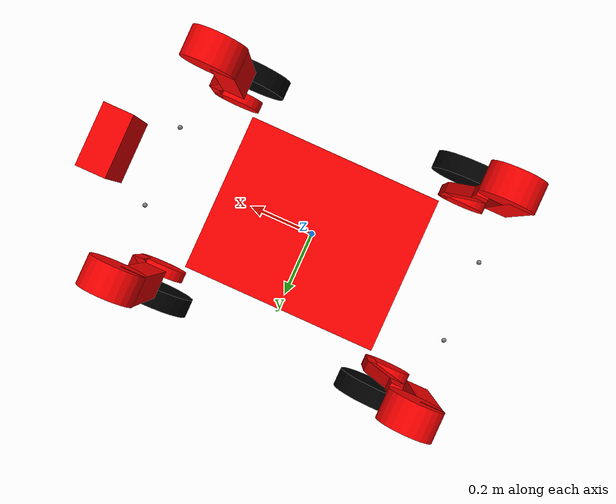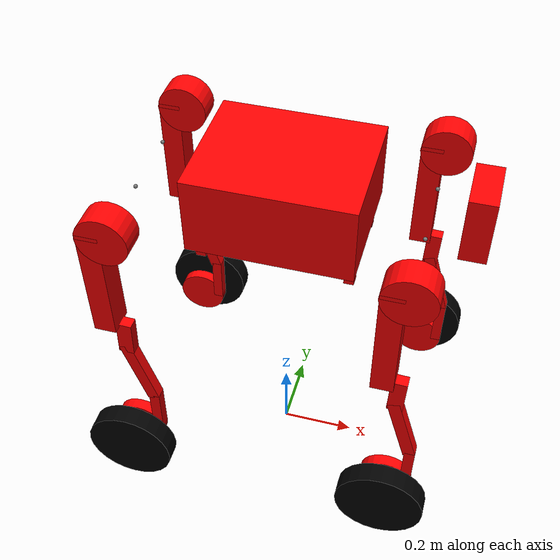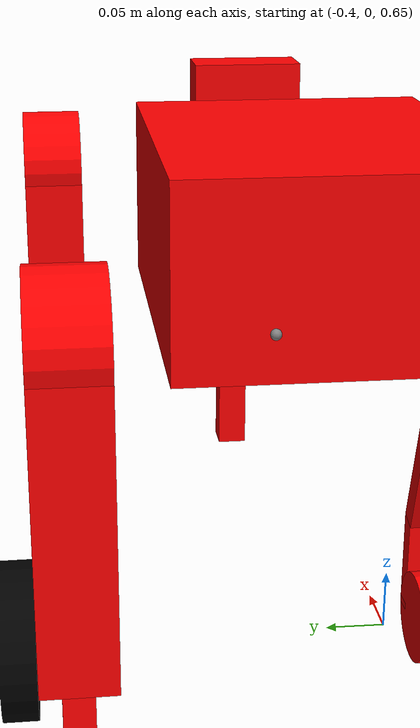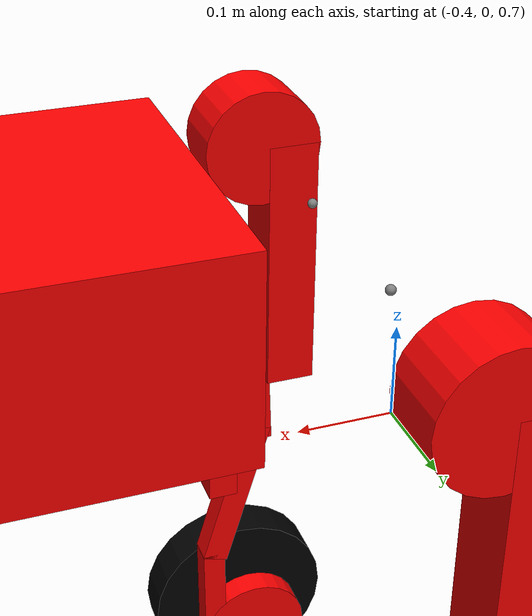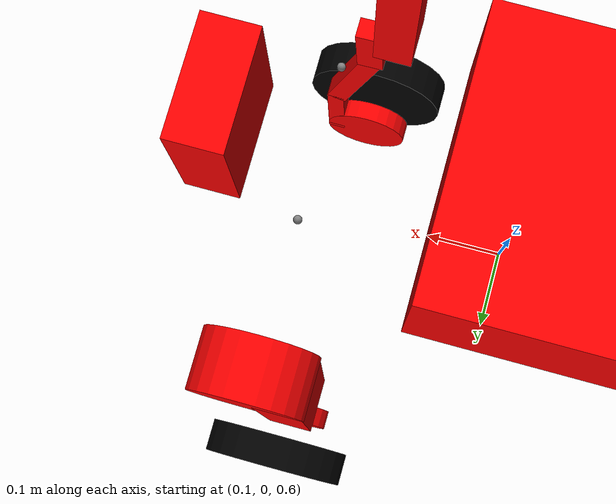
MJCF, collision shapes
<mujoco model="dynawheel">
  <compiler angle="radian" meshdir="../meshes/" autolimits="true"/>
  <option gravity='0 0 -9.806' iterations='50' solver='Newton' timestep='0.0005' cone="elliptic" impratio="100"/>

  <default>
    <material specular="0" shininess="0.25"/>

    <default class="dynawheel">
      <default class="visual">
        <geom contype="0" conaffinity="0" group="0" />
      </default>
      <default class="collision">
        <geom group="1" mass="0" density="0" />
      </default>
    </default>
  </default>

  <visual>
    <rgba com="0.502 1.0 0 0.5" contactforce="0.98 0.4 0.4 0.7" contactpoint="1.0 1.0 0.6 0.4"/>
    <scale com="0.2" forcewidth="0.035" contactwidth="0.10" contactheight="0.04"/>
  </visual>

  <asset>
    <mesh name="Base" file="base_simple.STL"/>
    <mesh name="LF_hip" file="lf_hip.STL"/>
    <mesh name="LF_thigh" file="lf_thigh.STL"/>
    <mesh name="RF_thigh" file="rf_thigh.STL"/>
    <mesh name="LF_calf" file="lf_calf.STL"/>
    <mesh name="RF_calf" file="rf_calf.STL"/>
    <mesh name="LF_wheel" file="lf_wheel.STL"/>
    <mesh name="RF_wheel" file="rf_wheel.STL"/>
    <mesh name="LIDAR" file="lidar.STL"/>
  </asset>

  <worldbody>
    <body name="Base" pos="0 0 0.90" quat="1 0 0 0" childclass="dynawheel">
    <joint name="floating_base" type="free" />
    <inertial mass="35.0" pos="0.0 -0.0 -0.0" fullinertia="0.236918 1.477981 1.527714 0.0 0.0 0.0"/>
    <geom pos="0 0 0" euler="0 0 0" type="mesh" contype="0" conaffinity="0" density="0" rgba="0.5 0.5 0.5 1" mesh="Base" group="1" />
    <geom pos="0.47403 0 0.01878" euler="0 0 0" type="mesh" contype="0" conaffinity="0" density="0" rgba="0.5 0.5 0.5 1" mesh="LIDAR" group="1" />
    <geom pos="0.0 0.0 0.0" euler="0 0 0" type="box" size="0.205 0.165 0.10" rgba="1 0 0 1" group="2" />
    <geom pos="0.185 0.105 -0.13" euler="0 0 0" type="box" size="0.0125 0.0125 0.03" rgba="1 0 0 1" group="2" />
    <geom pos="0.185 -0.105 -0.13" euler="0 0 0" type="box" size="0.0125 0.0125 0.03" rgba="1 0 0 1" group="2" />
    <geom pos="-0.185 0.105 -0.13" euler="0 0 0" type="box" size="0.0125 0.0125 0.03" rgba="1 0 0 1" group="2" />
    <geom pos="-0.185 -0.105 -0.13" euler="0 0 0" type="box" size="0.0125 0.0125 0.03" rgba="1 0 0 1" group="2" />
    <geom pos="0.456 0 0.024" euler="0 0 0" type="box" size="0.033 0.07 0.085" rgba="1 0 0 1" group="2" />
    <site name="imu" pos="0 0 0" quat="1 0 0 0"/>
      <body name="LF_hip" pos="0.346 0.09 0">
        <inertial mass="4.0" pos="-0.0037293 -0.0028271 -2.3984E-05" diaginertia="0.005458 0.008605 0.005981"/>
        <joint name="LF_HAA" pos="0 0 0" axis="1 0 0" range="-0.50 0.50" actuatorfrcrange="-200 200"/>
        <site name="LF_HAA_tor" pos="0 0 0" quat="1 0 0 0"/>
        <geom type="mesh" pos="0 0 0" euler="0 0 0" contype="0" conaffinity="0" density="0" rgba="0 0.8 0 1" mesh="LF_hip" group="1" />
        <body name="LF_thigh" pos="0.0 0.1733 0.0">
          <inertial mass="5.5" pos="-0.003963 -0.044529 -0.029278" fullinertia="0.068416 0.060125 0.017696 0.000018 -0.003286 0.000136"/>
          <joint name="LF_HFE" pos="0 0 0" axis="0 1 0" range="-1.57 3.14"/>
          <site name="LF_HFE_tor" pos="0 0 0" euler="0 0 0"/>
          <geom type="mesh" pos="0 0 0" euler="0 0 0" contype="0" conaffinity="0" density="0" rgba="0 0 0.8 1" mesh="LF_thigh" group="1" />
          <geom pos="0.0 0.0 0.0" euler="1.57 0 0" type="cylinder" size="0.065 0.035" rgba="1 0 0 1" group="2" />
          <geom pos="-0.035 0 -0.144" euler="0 0 0" type="box" size="0.028 0.035 0.155" rgba="1 0 0 1" group="2" />
          <body name="LF_calf" pos="0 0.0 -0.350">
            <inertial pos="0.006279 0.013363 -0.251104" mass="4.0" fullinertia="0.335338 0.337205 0.007327 0.000054 0.005346 0.018379"/>
            <joint name="LF_KFE" pos="0 0 0" axis="0 1 0" range="-2.74 -0.87" />
            <site name="LF_KFE_tor" pos="0 0 0" euler="0 0 0"/>
            <geom type="mesh" pos="0 0 0" euler="0 0 0" contype="0" conaffinity="0" density="0" rgba="0.870588 0.811765 0.764706 1" mesh="LF_calf" group="1" />
            <geom pos="0.002 0.0 0.008" euler="0 0.04 0" type="box" size="0.02 0.015 0.05" rgba="1 0 0 1" group="2" />
            <geom pos="0.025 0.0 -0.12" euler="0 -0.29 0" type="box" size="0.016 0.015 0.10" rgba="1 0 0 1" group="2" />
            <geom pos="0.054 0.0 -0.285" euler="0 0.01 0" type="box" size="0.014 0.015 0.075" rgba="1 0 0 1" group="2" />
            <geom pos="0.0 0.0 -0.350" euler="1.57 0 0" type="cylinder" size="0.068 0.015" rgba="1 0 0 1" group="2" />
            <body name="LF_wheel_motor" pos="0.0 0.0735 -0.35">
            <inertial pos="0 -0.0 0" mass="1.722" diaginertia="0.00781 0.014943 0.007809"/>
              <joint name="LF_WHEEL" pos="0 0 0" axis="0 1 0" range="-99999 99999" />
              <site name="LF_WHEEL_tor" pos="0 0 0" quat="1 0 0 0"/>
              <geom type="mesh" contype="0" conaffinity="0" density="0" rgba="0 0 0 1" mesh="LF_wheel" group="1"/>
              <geom pos="0 0 0" euler="1.57079632679 0 0" type="cylinder" size="0.116 0.026" friction="0.4 0.005 0.0001" rgba="0 0 0 1" group="2"/>
            </body>
          </body>
        </body>
      </body>
      <body name="LH_hip" pos="-0.346 0.09 0">
        <inertial mass="4.0" pos="0.0037293 -0.0028271 -2.3984E-05" diaginertia="0.005458 0.008605 0.005981"/>
        <joint name="LH_HAA" pos="0 0 0" axis="1 0 0" range="-0.50 0.50"/>
        <site name="LH_HAA_tor" pos="0 0 0" euler="0 0 0"/>
        <geom type="mesh" pos="0 0 0" euler="0 3.14 0" contype="0" conaffinity="0" density="0" rgba="0 0.8 0 1" mesh="LF_hip" group="1" />
        <body name="LH_thigh" pos="0.0 0.1733 0.0">
          <inertial mass="5.5" pos="-0.003963 -0.044529 -0.029278" fullinertia="0.068416 0.060125 0.017696 0.000018 -0.003286 0.000136"/>
          <joint name="LH_HFE" pos="0 0 0" axis="0 1 0" range="-1.43 4.58"/>
          <site name="LH_HFE_tor" pos="0 0 0" euler="0 0 0"/>
          <geom type="mesh" pos="0 0 0" euler="0 0 0" contype="0" conaffinity="0" density="0" rgba="0 0 0.8 1" mesh="LF_thigh" group="1" />
          <geom pos="0.0 0.0 0.0" euler="1.57 0 0" type="cylinder" size="0.065 0.035" rgba="1 0 0 1" group="2" />
          <geom pos="-0.035 0.0 -0.144" euler="0 0 0" type="box" size="0.028 0.035 0.155" rgba="1 0 0 1" group="2" />
          <body name="LH_calf" pos="0 0 -0.350">
            <inertial pos="0.006279 0.013363 -0.251104" mass="4.0" fullinertia="0.335338 0.337205 0.007327 0.000054 0.005346 0.018379"/>
            <joint name="LH_KFE" pos="0 0 0" axis="0 1 0" range="-2.74 -0.87" />
            <site name="LH_KFE_tor" pos="0 0 0" euler="0 0 0"/>
            <geom type="mesh" pos="0 0 0" euler="0 0 0" contype="0" conaffinity="0" density="0" rgba="0.870588 0.811765 0.764706 1" mesh="LF_calf" group="1" />
            <geom pos="0.002 0.0 0.008" euler="0 0.04 0" type="box" size="0.02 0.015 0.05" rgba="1 0 0 1" group="2" />
            <geom pos="0.025 0.0 -0.12" euler="0 -0.29 0" type="box" size="0.016 0.015 0.10" rgba="1 0 0 1" group="2" />
            <geom pos="0.054 0.0 -0.285" euler="0 0.01 0" type="box" size="0.014 0.015 0.075" rgba="1 0 0 1" group="2" />
            <geom pos="0.0 0.0 -0.350" euler="1.57 0 0" type="cylinder" size="0.068 0.015" rgba="1 0 0 1" group="2" />
            <body name="LH_wheel_motor" pos="0.0 0.0735 -0.35">
            <inertial pos="0 -0.000777 0" mass="1.722" diaginertia="0.00781 0.014943 0.007809"/>
              <joint name="LH_WHEEL" pos="0 0 0" axis="0 1 0" range="-99999 99999" />
              <site name="LH_WHEEL_tor" pos="0 0 0" quat="1 0 0 0"/>
              <geom type="mesh" contype="0" conaffinity="0" density="0" rgba="0 0 0 1" mesh="LF_wheel" group="1"/>
              <geom pos="0 0 0" euler="1.57079632679 0 0" type="cylinder" size="0.116 0.026" friction="0.4 0.005 0.0001" rgba="0 0 0 1" group="2"/>
            </body>
          </body>
        </body>
      </body>
      <body name="RF_hip" pos="0.346 -0.09 0">
        <inertial mass="4.0" pos="-0.0037293 0.0028271 -2.3984E-05" diaginertia="0.005458 0.008605 0.005981"/>
        <joint name="RF_HAA" pos="0 0 0" axis="1 0 0" range="-0.50 0.50"/>
        <site name="RF_HAA_tor" pos="0 0 0" quat="1 0 0 0"/>
        <geom type="mesh" pos="0 0 0" euler="3.14 0 0" contype="0" conaffinity="0" density="0" rgba="0 0.8 0 1" mesh="LF_hip" group="1" />
        <body name="RF_thigh" pos="0.0 -0.1733 0.0">
          <inertial mass="5.5" pos="-0.003963 0.044529 -0.029278" fullinertia="0.068416 0.060125 0.017696 -0.000018 -0.003286 -0.000136"/>
          <joint name="RF_HFE" pos="0 0 0" axis="0 1 0" range="-1.43 4.58"/>
          <site name="RF_HFE_tor" pos="0 0 0" euler="0 0 0"/>
          <geom type="mesh" pos="0 0 0" euler="0 0 0" contype="0" conaffinity="0" density="0" rgba="0 0 0.8 1" mesh="RF_thigh" group="1" />
          <geom pos="0.0 0.0 0.0" euler="1.57 0 0" type="cylinder" size="0.065 0.035" rgba="1 0 0 1" group="2" />
          <geom pos="-0.035 0 -0.144" euler="0 0 0" type="box" size="0.028 0.035 0.155" rgba="1 0 0 1" group="2" />
          <body name="RF_calf" pos="0 0.0 -0.350">
            <inertial pos="0.006279 -0.013363 -0.251104" mass="4.0" fullinertia="0.335338 0.337205 0.007327 -0.000054 0.005346 -0.018379"/>
            <joint name="RF_KFE" pos="0 0 0" axis="0 1 0" range="-2.74 -0.87"/>
            <site name="RF_KFE_tor" pos="0 0 0" euler="0 0 0"/>
            <geom type="mesh" pos="0 0 0" euler="3.141592653589793 0 0" contype="0" conaffinity="0" density="0" rgba="0.870588 0.811765 0.764706 1" mesh="RF_calf" group="1" />
            <geom pos="0.002 0.0 0.008" euler="0 0.04 0" type="box" size="0.02 0.015 0.05" rgba="1 0 0 1" group="2" />
            <geom pos="0.025 0.0 -0.12" euler="0 -0.29 0" type="box" size="0.016 0.015 0.10" rgba="1 0 0 1" group="2" />
            <geom pos="0.054 0.0 -0.285" euler="0 0.01 0" type="box" size="0.014 0.015 0.075" rgba="1 0 0 1" group="2" />
            <geom pos="0.0 0.0 -0.350" euler="1.57 0 0" type="cylinder" size="0.068 0.015" rgba="1 0 0 1" group="2" />
            <body name="RF_wheel_motor" pos="0.0 -0.0735 -0.35">
            <inertial pos="0 0.000777 0" mass="1.722" diaginertia="0.00781 0.014943 0.007809"/>
              <joint name="RF_WHEEL" pos="0 0 0" axis="0 1 0" range="-99999 99999"/>
              <site name="RF_WHEEL_tor" pos="0 0 0" quat="1 0 0 0"/>
              <geom type="mesh" contype="0" conaffinity="0" density="0" rgba="0 0 0 1" mesh="RF_wheel" group="1"/>
              <geom pos="0 0 0" euler="1.57079632679 0 0" type="cylinder" size="0.116 0.026" friction="0.4 0.005 0.0001" rgba="0 0 0 1" group="2"/>
            </body>
          </body>
        </body>
      </body>
      <body name="RH_hip" pos="-0.346 -0.09 0">
        <inertial mass="4.0" pos="0.0037293 0.0028271 -2.3984E-05" diaginertia="0.005458 0.008605 0.005981"/>
        <joint name="RH_HAA" pos="0 0 0" axis="1 0 0" range="-0.50 0.50"/>
        <site name="RH_HAA_tor" pos="0 0 0" quat="1 0 0 0"/>
        <geom type="mesh" pos="0 0 0" euler="0 0 3.14" contype="0" conaffinity="0" density="0" rgba="0 0.8 0 1" mesh="LF_hip" group="1" />
        <body name="RH_thigh" pos="0.0 -0.1733 0.0">
          <inertial mass="5.5" pos="-0.003963 0.044529 -0.029278" fullinertia="0.068416 0.060125 0.017696 -0.000018 -0.003286 -0.000136"/>
          <joint name="RH_HFE" pos="0 0 0" axis="0 1 0" range="-1.43 4.58"/>
          <site name="RH_HFE_tor" pos="0 0 0" euler="0 0 0"/>
          <geom type="mesh" pos="0 0 0" euler="0 0 0" contype="0" conaffinity="0" density="0" rgba="0 0 0.8 1" mesh="RF_thigh" group="1" />
          <geom pos="0.0 0.0 0.0" euler="1.57 0 0" type="cylinder" size="0.065 0.035" rgba="1 0 0 1" group="2" />
          <geom pos="-0.035 0 -0.144" euler="0 0 0" type="box" size="0.028 0.035 0.155" rgba="1 0 0 1" group="2" />
          <body name="RH_calf" pos="0 0.0 -0.350">
            <inertial pos="0.006279 -0.013363 -0.251104" mass="4.0" fullinertia="0.335338 0.337205 0.007327 -0.000054 0.005346 -0.018379"/>
            <joint name="RH_KFE" pos="0 0 0" axis="0 1 0" range="-2.74 -0.87"/>
            <site name="RH_KFE_tor" pos="0 0 0" euler="0 0 0"/>
            <geom type="mesh" pos="0 0 0" euler="3.141592653589793 0 0" contype="0" conaffinity="0" density="0" rgba="0.870588 0.811765 0.764706 1" mesh="RF_calf" group="1" />
            <geom pos="0.002 0.0 0.008" euler="0 0.04 0" type="box" size="0.02 0.015 0.05" rgba="1 0 0 1" group="2" />
            <geom pos="0.025 0.0 -0.12" euler="0 -0.29 0" type="box" size="0.016 0.015 0.10" rgba="1 0 0 1" group="2" />
            <geom pos="0.054 0.0 -0.285" euler="0 0.01 0" type="box" size="0.014 0.015 0.075" rgba="1 0 0 1" group="2" />
            <geom pos="0.0 0.0 -0.350" euler="1.57 0 0" type="cylinder" size="0.068 0.015" rgba="1 0 0 1" group="2" />
            <body name="RH_wheel_motor" pos="0.0 -0.0735 -0.35">
            <inertial pos="0 0.000777 0" mass="1.722" diaginertia="0.00781 0.014943 0.007809"/>
              <joint name="RH_WHEEL" pos="0 0 0" axis="0 1 0" range="-99999 99999"/>
              <site name="RH_WHEEL_tor" pos="0 0 0" quat="1 0 0 0"/>
              <geom type="mesh" contype="0" conaffinity="0" density="0" rgba="0 0 0 1" mesh="RF_wheel" group="1"/>
              <geom pos="0 0 0" euler="1.57079632679 0 0" type="cylinder" size="0.116 0.026" friction="0.4 0.005 0.0001" rgba="0 0 0 1" group="2"/>
            </body>
          </body>
        </body>
      </body>
    </body>
  </worldbody>

  <contact>
    <exclude body1="Base" body2="LF_thigh"/>
    <exclude body1="Base" body2="LH_thigh"/>
    <exclude body1="Base" body2="RF_thigh"/>
    <exclude body1="Base" body2="RH_thigh"/>
    <exclude body1="LF_thigh" body2="LF_calf"/>
    <exclude body1="LH_thigh" body2="LH_calf"/>
    <exclude body1="RF_thigh" body2="RF_calf"/>
    <exclude body1="RH_thigh" body2="RH_calf"/>

    <exclude body1="LF_calf" body2="LF_wheel_motor"/>
    <exclude body1="LH_calf" body2="LH_wheel_motor"/>
    <exclude body1="RF_calf" body2="RF_wheel_motor"/>
    <exclude body1="RH_calf" body2="RH_wheel_motor"/>

    <exclude body1="LF_thigh" body2="LF_wheel_motor"/>
    <exclude body1="LH_thigh" body2="LH_wheel_motor"/>
    <exclude body1="RF_thigh" body2="RF_wheel_motor"/>
    <exclude body1="RH_thigh" body2="RH_wheel_motor"/>
    <exclude body1="Base" body2="LF_wheel_motor"/>
    <exclude body1="Base" body2="LH_wheel_motor"/>
    <exclude body1="Base" body2="RF_wheel_motor"/>
    <exclude body1="Base" body2="RH_wheel_motor"/>
  </contact>

  <actuator>
    <motor name="LF_HAA" joint="LF_HAA" gear="1" ctrllimited="true" ctrlrange="-200.1 +200.1"/>
    <motor name="LF_HFE" joint="LF_HFE" gear="1" ctrllimited="true" ctrlrange="-200.2 +200.2"/>
    <motor name="LF_KFE" joint="LF_KFE" gear="1" ctrllimited="true" ctrlrange="-200.3 +200.3"/>
    <motor name="LF_WHEEL" joint="LF_WHEEL" gear="1" ctrllimited="true" ctrlrange="-75.3 +75.3"/>
    <motor name="LH_HAA" joint="LH_HAA" gear="1" ctrllimited="true" ctrlrange="-200.1 +200.1"/>
    <motor name="LH_HFE" joint="LH_HFE" gear="1" ctrllimited="true" ctrlrange="-200.2 +200.2"/>
    <motor name="LH_KFE" joint="LH_KFE" gear="1" ctrllimited="true" ctrlrange="-200.3 +200.3"/>
    <motor name="LH_WHEEL" joint="LH_WHEEL" gear="1" ctrllimited="true" ctrlrange="-75.3 +75.3"/>
    <motor name="RF_HAA" joint="RF_HAA" gear="1" ctrllimited="true" ctrlrange="-200.1 +200.1"/>
    <motor name="RF_HFE" joint="RF_HFE" gear="1" ctrllimited="true" ctrlrange="-200.2 +200.2"/>
    <motor name="RF_KFE" joint="RF_KFE" gear="1" ctrllimited="true" ctrlrange="-200.3 +200.3"/>
    <motor name="RF_WHEEL" joint="RF_WHEEL" gear="1" ctrllimited="true" ctrlrange="-75.3 +75.3"/>
    <motor name="RH_HAA" joint="RH_HAA" gear="1" ctrllimited="true" ctrlrange="-200.1 +200.1"/>
    <motor name="RH_HFE" joint="RH_HFE" gear="1" ctrllimited="true" ctrlrange="-200.2 +200.2"/>
    <motor name="RH_KFE" joint="RH_KFE" gear="1" ctrllimited="true" ctrlrange="-200.3 +200.3"/>
    <motor name="RH_WHEEL" joint="RH_WHEEL" gear="1" ctrllimited="true" ctrlrange="-75.3 +75.3"/>
  </actuator>

  <sensor>
    <framequat name="Body_Quat" objtype="site" objname="imu"/>
    <gyro name="Body_Gyro" site="imu"/>
    <accelerometer name="Body_Acc" site="imu"/>
    <jointpos name="LF_HAA_pos" joint="LF_HAA"/>
    <jointpos name="LF_HFE_pos" joint="LF_HFE"/>
    <jointpos name="LF_KFE_pos" joint="LF_KFE"/>
    <jointpos name="LH_HAA_pos" joint="LH_HAA"/>
    <jointpos name="LH_HFE_pos" joint="LH_HFE"/>
    <jointpos name="LH_KFE_pos" joint="LH_KFE"/>
    <jointpos name="RF_HAA_pos" joint="RF_HAA"/>
    <jointpos name="RF_HFE_pos" joint="RF_HFE"/>
    <jointpos name="RF_KFE_pos" joint="RF_KFE"/>
    <jointpos name="RH_HAA_pos" joint="RH_HAA"/>
    <jointpos name="RH_HFE_pos" joint="RH_HFE"/>
    <jointpos name="RH_KFE_pos" joint="RH_KFE"/>
    <jointpos name="LF_WHEEL_pos" joint="LF_WHEEL"/>
    <jointpos name="LH_WHEEL_pos" joint="LH_WHEEL"/>
    <jointpos name="RF_WHEEL_pos" joint="RF_WHEEL"/>
    <jointpos name="RH_WHEEL_pos" joint="RH_WHEEL"/>

    <jointvel name="LF_HAA_vel" joint="LF_HAA"/>
    <jointvel name="LF_HFE_vel" joint="LF_HFE"/>
    <jointvel name="LF_KFE_vel" joint="LF_KFE"/>
    <jointvel name="LH_HAA_vel" joint="LH_HAA"/>
    <jointvel name="LH_HFE_vel" joint="LH_HFE"/>
    <jointvel name="LH_KFE_vel" joint="LH_KFE"/>
    <jointvel name="RF_HAA_vel" joint="RF_HAA"/>
    <jointvel name="RF_HFE_vel" joint="RF_HFE"/>
    <jointvel name="RF_KFE_vel" joint="RF_KFE"/>
    <jointvel name="RH_HAA_vel" joint="RH_HAA"/>
    <jointvel name="RH_HFE_vel" joint="RH_HFE"/>
    <jointvel name="RH_KFE_vel" joint="RH_KFE"/>
    <jointvel name="LF_WHEEL_vel" joint="LF_WHEEL"/>
    <jointvel name="LH_WHEEL_vel" joint="LH_WHEEL"/>
    <jointvel name="RF_WHEEL_vel" joint="RF_WHEEL"/>
    <jointvel name="RH_WHEEL_vel" joint="RH_WHEEL"/>

    <torque name="LF_HAA_tor" site="LF_HAA_tor"/>
    <torque name="LF_HFE_tor" site="LF_HFE_tor"/>
    <torque name="LF_KFE_tor" site="LF_KFE_tor"/>
    <torque name="LH_HAA_tor" site="LH_HAA_tor"/>
    <torque name="LH_HFE_tor" site="LH_HFE_tor"/>
    <torque name="LH_KFE_tor" site="LH_KFE_tor"/>
    <torque name="RF_HAA_tor" site="RF_HAA_tor"/>
    <torque name="RF_HFE_tor" site="RF_HFE_tor"/>
    <torque name="RF_KFE_tor" site="RF_KFE_tor"/>
    <torque name="RH_HAA_tor" site="RH_HAA_tor"/>
    <torque name="RH_HFE_tor" site="RH_HFE_tor"/>
    <torque name="RH_KFE_tor" site="RH_KFE_tor"/>
    <torque name="LF_WHEEL_tor" site="LF_WHEEL_tor"/>
    <torque name="LH_WHEEL_tor" site="LH_WHEEL_tor"/>
    <torque name="RF_WHEEL_tor" site="RF_WHEEL_tor"/>
    <torque name="RH_WHEEL_tor" site="RH_WHEEL_tor"/>

  </sensor>

  <keyframe>
    <key name="lie" qpos="0.0 0.0 0.14
                            1.0 0.0 0.0 0.0
                            +0.46 +1.06 -2.73 0.0
                            +0.46 +1.06 -2.73 0.0
                            -0.46 +1.06 -2.73 0.0
                            -0.46 +1.06 -2.73 0.0"
                    ctrl="-0.0 +0.0 -0.0 0.0
                          -0.0 -0.0 +0.0 0.0
                          +0.0 +0.0 -0.0 0.0
                          +0.0 -0.0 +0.0 0.0"/>
  </keyframe>

</mujoco>
